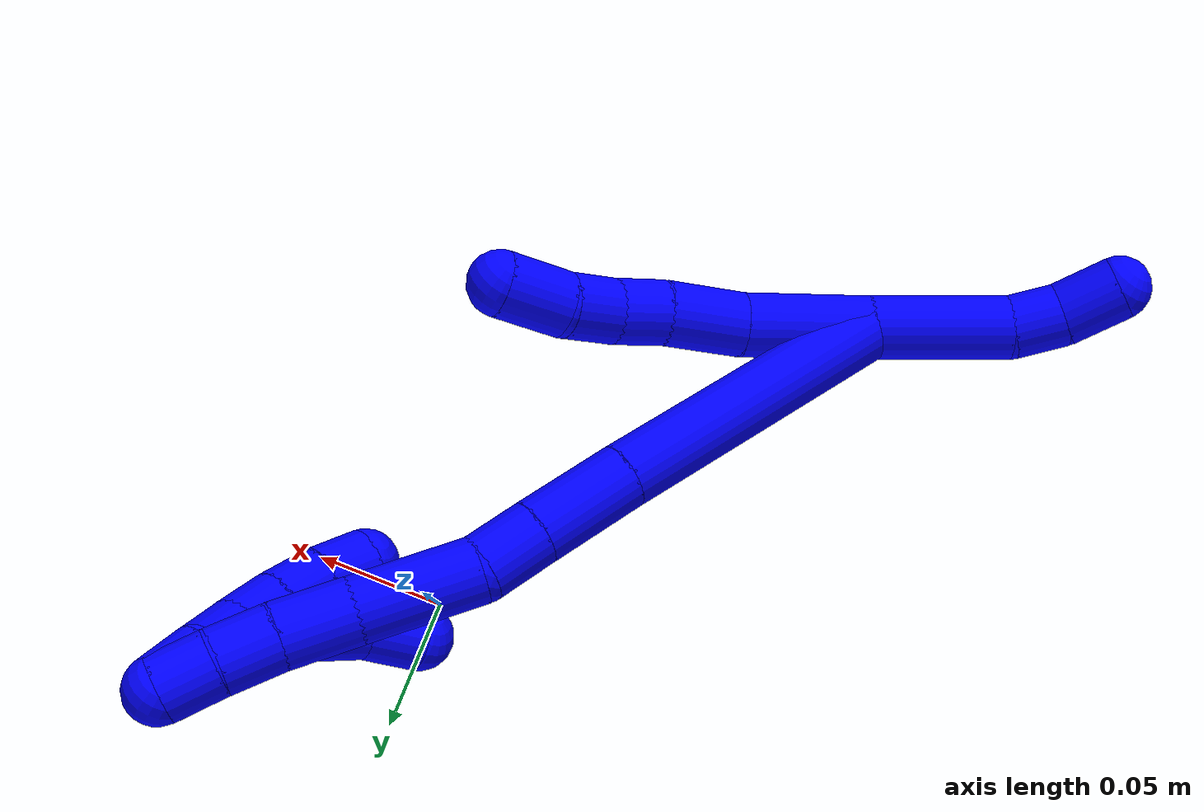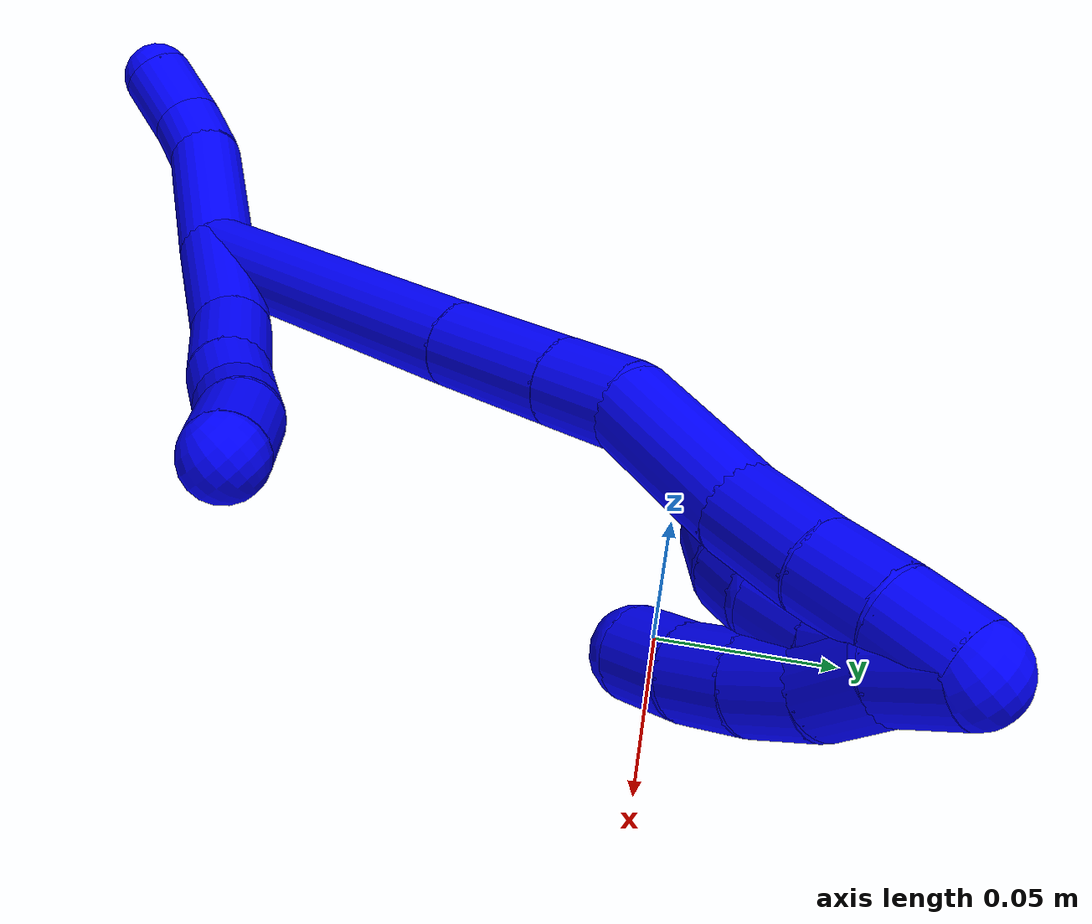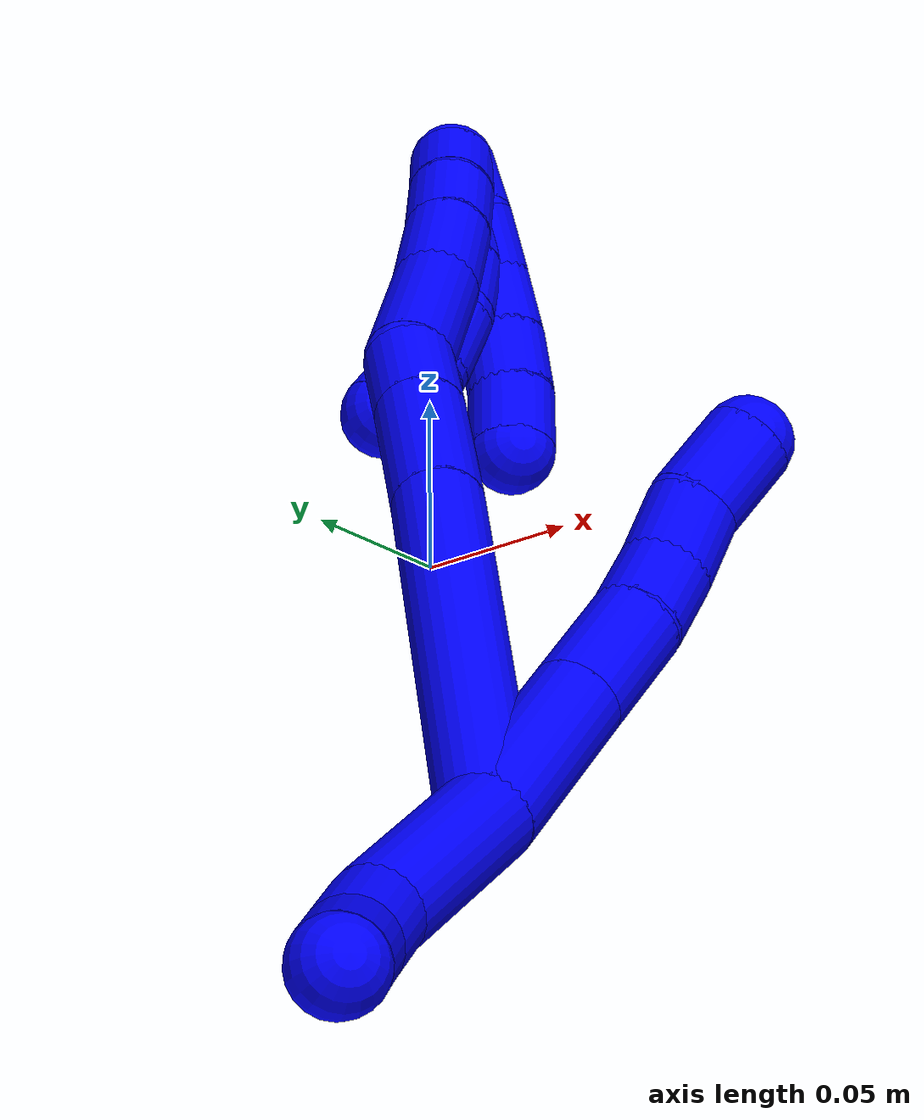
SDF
<sdf version="1.7">
 <world name="default">
  <model name="1">
   <static>0</static>
   <link name="1">
    <collision name="collision-cylinder-e_1_2_8">
     <pose>0.022806 0.005603 -0.010366 -2.64609 1.0939 -2.35416</pose>
     <geometry><cylinder><radius>0.0125</radius><length>0.05134</length></cylinder></geometry>
     <surface>
      <friction><ode><mu>1.16</mu><mu2>1.16</mu2><slip1>0</slip1><slip2>0</slip2></ode></friction>
      <contact><ode><kp>1e+06</kp><kd>1</kd><max_vel>0</max_vel><min_depth>0.001</min_depth></ode></contact>
     </surface>
    </collision>
    <visual name="visual-cylinder-e_1_2_8">
     <pose>0.022806 0.005603 -0.010366 -2.64609 1.0939 -2.35416</pose>
     <geometry><cylinder><radius>0.0125</radius><length>0.05134</length></cylinder></geometry>
     <material><ambient>0 0 1 1</ambient></material>
    </visual>
    <collision name="collision-cylinder-e_2_8_9">
     <pose>0.060382 0.014872 -0.024689 -2.39424 1.22063 -2.11965</pose>
     <geometry><cylinder><radius>0.0125</radius><length>0.031448</length></cylinder></geometry>
     <surface>
      <friction><ode><mu>1.16</mu><mu2>1.16</mu2><slip1>0</slip1><slip2>0</slip2></ode></friction>
      <contact><ode><kp>1e+06</kp><kd>1</kd><max_vel>0</max_vel><min_depth>0.001</min_depth></ode></contact>
     </surface>
    </collision>
    <visual name="visual-cylinder-e_2_8_9">
     <pose>0.060382 0.014872 -0.024689 -2.39424 1.22063 -2.11965</pose>
     <geometry><cylinder><radius>0.0125</radius><length>0.031448</length></cylinder></geometry>
     <material><ambient>0 0 1 1</ambient></material>
    </visual>
    <collision name="collision-cylinder-e_3_9_10">
     <pose>0.08419 0.021933 -0.031814 -2.32179 1.09614 -1.9044</pose>
     <geometry><cylinder><radius>0.0125</radius><length>0.020324</length></cylinder></geometry>
     <surface>
      <friction><ode><mu>1.16</mu><mu2>1.16</mu2><slip1>0</slip1><slip2>0</slip2></ode></friction>
      <contact><ode><kp>1e+06</kp><kd>1</kd><max_vel>0</max_vel><min_depth>0.001</min_depth></ode></contact>
     </surface>
    </collision>
    <visual name="visual-cylinder-e_3_9_10">
     <pose>0.08419 0.021933 -0.031814 -2.32179 1.09614 -1.9044</pose>
     <geometry><cylinder><radius>0.0125</radius><length>0.020324</length></cylinder></geometry>
     <material><ambient>0 0 1 1</ambient></material>
    </visual>
    <collision name="collision-cylinder-e_4_10_11">
     <pose>0.102473 0.029964 -0.036107 -1.80865 1.09442 -1.31817</pose>
     <geometry><cylinder><radius>0.0125</radius><length>0.020807</length></cylinder></geometry>
     <surface>
      <friction><ode><mu>1.16</mu><mu2>1.16</mu2><slip1>0</slip1><slip2>0</slip2></ode></friction>
      <contact><ode><kp>1e+06</kp><kd>1</kd><max_vel>0</max_vel><min_depth>0.001</min_depth></ode></contact>
     </surface>
    </collision>
    <visual name="visual-cylinder-e_4_10_11">
     <pose>0.102473 0.029964 -0.036107 -1.80865 1.09442 -1.31817</pose>
     <geometry><cylinder><radius>0.0125</radius><length>0.020807</length></cylinder></geometry>
     <material><ambient>0 0 1 1</ambient></material>
    </visual>
    <collision name="collision-cylinder-e_5_11_6">
     <pose>0.124389 0.037544 -0.03816 -1.87632 1.33187 -1.6399</pose>
     <geometry><cylinder><radius>0.0125</radius><length>0.026082</length></cylinder></geometry>
     <surface>
      <friction><ode><mu>1.16</mu><mu2>1.16</mu2><slip1>0</slip1><slip2>0</slip2></ode></friction>
      <contact><ode><kp>1e+06</kp><kd>1</kd><max_vel>0</max_vel><min_depth>0.001</min_depth></ode></contact>
     </surface>
    </collision>
    <visual name="visual-cylinder-e_5_11_6">
     <pose>0.124389 0.037544 -0.03816 -1.87632 1.33187 -1.6399</pose>
     <geometry><cylinder><radius>0.0125</radius><length>0.026082</length></cylinder></geometry>
     <material><ambient>0 0 1 1</ambient></material>
    </visual>
    <collision name="collision-cylinder-e_1_2_12">
     <pose>-0.023558 -0.002202 0.014157 0.154288 -1.02438 -0.086865</pose>
     <geometry><cylinder><radius>0.0125</radius><length>0.055145</length></cylinder></geometry>
     <surface>
      <friction><ode><mu>1.16</mu><mu2>1.16</mu2><slip1>0</slip1><slip2>0</slip2></ode></friction>
      <contact><ode><kp>1e+06</kp><kd>1</kd><max_vel>0</max_vel><min_depth>0.001</min_depth></ode></contact>
     </surface>
    </collision>
    <visual name="visual-cylinder-e_1_2_12">
     <pose>-0.023558 -0.002202 0.014157 0.154288 -1.02438 -0.086865</pose>
     <geometry><cylinder><radius>0.0125</radius><length>0.055145</length></cylinder></geometry>
     <material><ambient>0 0 1 1</ambient></material>
    </visual>
    <collision name="collision-cylinder-e_2_12_13">
     <pose>-0.054362 -0.006182 0.035402 0.245849 -0.781203 -0.101656</pose>
     <geometry><cylinder><radius>0.0125</radius><length>0.020582</length></cylinder></geometry>
     <surface>
      <friction><ode><mu>1.16</mu><mu2>1.16</mu2><slip1>0</slip1><slip2>0</slip2></ode></friction>
      <contact><ode><kp>1e+06</kp><kd>1</kd><max_vel>0</max_vel><min_depth>0.001</min_depth></ode></contact>
     </surface>
    </collision>
    <visual name="visual-cylinder-e_2_12_13">
     <pose>-0.054362 -0.006182 0.035402 0.245849 -0.781203 -0.101656</pose>
     <geometry><cylinder><radius>0.0125</radius><length>0.020582</length></cylinder></geometry>
     <material><ambient>0 0 1 1</ambient></material>
    </visual>
    <collision name="collision-cylinder-e_3_13_5">
     <pose>-0.06766 -0.009335 0.052919 0.131026 -0.522091 -0.035049</pose>
     <geometry><cylinder><radius>0.0125</radius><length>0.024273</length></cylinder></geometry>
     <surface>
      <friction><ode><mu>1.16</mu><mu2>1.16</mu2><slip1>0</slip1><slip2>0</slip2></ode></friction>
      <contact><ode><kp>1e+06</kp><kd>1</kd><max_vel>0</max_vel><min_depth>0.001</min_depth></ode></contact>
     </surface>
    </collision>
    <visual name="visual-cylinder-e_3_13_5">
     <pose>-0.06766 -0.009335 0.052919 0.131026 -0.522091 -0.035049</pose>
     <geometry><cylinder><radius>0.0125</radius><length>0.024273</length></cylinder></geometry>
     <material><ambient>0 0 1 1</ambient></material>
    </visual>
    <collision name="collision-cylinder-e_1_2_14">
     <pose>0.03353 0.038492 -0.031892 -2.26269 0.590843 -1.14902</pose>
     <geometry><cylinder><radius>0.0125</radius><length>0.120383</length></cylinder></geometry>
     <surface>
      <friction><ode><mu>1.16</mu><mu2>1.16</mu2><slip1>0</slip1><slip2>0</slip2></ode></friction>
      <contact><ode><kp>1e+06</kp><kd>1</kd><max_vel>0</max_vel><min_depth>0.001</min_depth></ode></contact>
     </surface>
    </collision>
    <visual name="visual-cylinder-e_1_2_14">
     <pose>0.03353 0.038492 -0.031892 -2.26269 0.590843 -1.14902</pose>
     <geometry><cylinder><radius>0.0125</radius><length>0.120383</length></cylinder></geometry>
     <material><ambient>0 0 1 1</ambient></material>
    </visual>
    <collision name="collision-cylinder-e_2_14_15">
     <pose>0.077789 0.089955 -0.074538 -2.26311 0.566968 -1.11005</pose>
     <geometry><cylinder><radius>0.0125</radius><length>0.03995</length></cylinder></geometry>
     <surface>
      <friction><ode><mu>1.16</mu><mu2>1.16</mu2><slip1>0</slip1><slip2>0</slip2></ode></friction>
      <contact><ode><kp>1e+06</kp><kd>1</kd><max_vel>0</max_vel><min_depth>0.001</min_depth></ode></contact>
     </surface>
    </collision>
    <visual name="visual-cylinder-e_2_14_15">
     <pose>0.077789 0.089955 -0.074538 -2.26311 0.566968 -1.11005</pose>
     <geometry><cylinder><radius>0.0125</radius><length>0.03995</length></cylinder></geometry>
     <material><ambient>0 0 1 1</ambient></material>
    </visual>
    <collision name="collision-cylinder-e_3_15_16">
     <pose>0.094788 0.110726 -0.091896 -2.27318 0.550427 -1.09394</pose>
     <geometry><cylinder><radius>0.0125</radius><length>0.023981</length></cylinder></geometry>
     <surface>
      <friction><ode><mu>1.16</mu><mu2>1.16</mu2><slip1>0</slip1><slip2>0</slip2></ode></friction>
      <contact><ode><kp>1e+06</kp><kd>1</kd><max_vel>0</max_vel><min_depth>0.001</min_depth></ode></contact>
     </surface>
    </collision>
    <visual name="visual-cylinder-e_3_15_16">
     <pose>0.094788 0.110726 -0.091896 -2.27318 0.550427 -1.09394</pose>
     <geometry><cylinder><radius>0.0125</radius><length>0.023981</length></cylinder></geometry>
     <material><ambient>0 0 1 1</ambient></material>
    </visual>
    <collision name="collision-cylinder-e_4_16_17">
     <pose>0.117168 0.127228 -0.112093 -2.57221 0.784367 -1.91007</pose>
     <geometry><cylinder><radius>0.0125</radius><length>0.045608</length></cylinder></geometry>
     <surface>
      <friction><ode><mu>1.16</mu><mu2>1.16</mu2><slip1>0</slip1><slip2>0</slip2></ode></friction>
      <contact><ode><kp>1e+06</kp><kd>1</kd><max_vel>0</max_vel><min_depth>0.001</min_depth></ode></contact>
     </surface>
    </collision>
    <visual name="visual-cylinder-e_4_16_17">
     <pose>0.117168 0.127228 -0.112093 -2.57221 0.784367 -1.91007</pose>
     <geometry><cylinder><radius>0.0125</radius><length>0.045608</length></cylinder></geometry>
     <material><ambient>0 0 1 1</ambient></material>
    </visual>
    <collision name="collision-cylinder-e_5_17_18">
     <pose>0.143382 0.142713 -0.132743 -2.37589 0.801444 -1.62142</pose>
     <geometry><cylinder><radius>0.0125</radius><length>0.028137</length></cylinder></geometry>
     <surface>
      <friction><ode><mu>1.16</mu><mu2>1.16</mu2><slip1>0</slip1><slip2>0</slip2></ode></friction>
      <contact><ode><kp>1e+06</kp><kd>1</kd><max_vel>0</max_vel><min_depth>0.001</min_depth></ode></contact>
     </surface>
    </collision>
    <visual name="visual-cylinder-e_5_17_18">
     <pose>0.143382 0.142713 -0.132743 -2.37589 0.801444 -1.62142</pose>
     <geometry><cylinder><radius>0.0125</radius><length>0.028137</length></cylinder></geometry>
     <material><ambient>0 0 1 1</ambient></material>
    </visual>
    <collision name="collision-cylinder-e_6_18_19">
     <pose>0.160625 0.155082 -0.145625 -2.37729 0.723941 -1.51123</pose>
     <geometry><cylinder><radius>0.0125</radius><length>0.021548</length></cylinder></geometry>
     <surface>
      <friction><ode><mu>1.16</mu><mu2>1.16</mu2><slip1>0</slip1><slip2>0</slip2></ode></friction>
      <contact><ode><kp>1e+06</kp><kd>1</kd><max_vel>0</max_vel><min_depth>0.001</min_depth></ode></contact>
     </surface>
    </collision>
    <visual name="visual-cylinder-e_6_18_19">
     <pose>0.160625 0.155082 -0.145625 -2.37729 0.723941 -1.51123</pose>
     <geometry><cylinder><radius>0.0125</radius><length>0.021548</length></cylinder></geometry>
     <material><ambient>0 0 1 1</ambient></material>
    </visual>
    <collision name="collision-cylinder-e_7_19_1">
     <pose>0.174011 0.165485 -0.15791 -2.5007 0.659867 -1.60214</pose>
     <geometry><cylinder><radius>0.0125</radius><length>0.020394</length></cylinder></geometry>
     <surface>
      <friction><ode><mu>1.16</mu><mu2>1.16</mu2><slip1>0</slip1><slip2>0</slip2></ode></friction>
      <contact><ode><kp>1e+06</kp><kd>1</kd><max_vel>0</max_vel><min_depth>0.001</min_depth></ode></contact>
     </surface>
    </collision>
    <visual name="visual-cylinder-e_7_19_1">
     <pose>0.174011 0.165485 -0.15791 -2.5007 0.659867 -1.60214</pose>
     <geometry><cylinder><radius>0.0125</radius><length>0.020394</length></cylinder></geometry>
     <material><ambient>0 0 1 1</ambient></material>
    </visual>
    <collision name="collision-cylinder-e_1_1_20">
     <pose>0.175881 0.161648 -0.161936 1.29692 -0.453562 -0.346212</pose>
     <geometry><cylinder><radius>0.0125</radius><length>0.02</length></cylinder></geometry>
     <surface>
      <friction><ode><mu>1.16</mu><mu2>1.16</mu2><slip1>0</slip1><slip2>0</slip2></ode></friction>
      <contact><ode><kp>1e+06</kp><kd>1</kd><max_vel>0</max_vel><min_depth>0.001</min_depth></ode></contact>
     </surface>
    </collision>
    <visual name="visual-cylinder-e_1_1_20">
     <pose>0.175881 0.161648 -0.161936 1.29692 -0.453562 -0.346212</pose>
     <geometry><cylinder><radius>0.0125</radius><length>0.02</length></cylinder></geometry>
     <material><ambient>0 0 1 1</ambient></material>
    </visual>
    <collision name="collision-cylinder-e_2_20_21">
     <pose>0.167436 0.143857 -0.159575 1.57845 -0.418413 -0.421536</pose>
     <geometry><cylinder><radius>0.0125</radius><length>0.02</length></cylinder></geometry>
     <surface>
      <friction><ode><mu>1.16</mu><mu2>1.16</mu2><slip1>0</slip1><slip2>0</slip2></ode></friction>
      <contact><ode><kp>1e+06</kp><kd>1</kd><max_vel>0</max_vel><min_depth>0.001</min_depth></ode></contact>
     </surface>
    </collision>
    <visual name="visual-cylinder-e_2_20_21">
     <pose>0.167436 0.143857 -0.159575 1.57845 -0.418413 -0.421536</pose>
     <geometry><cylinder><radius>0.0125</radius><length>0.02</length></cylinder></geometry>
     <material><ambient>0 0 1 1</ambient></material>
    </visual>
    <collision name="collision-cylinder-e_3_21_22">
     <pose>0.15859 0.126182 -0.157589 1.33446 -0.498718 -0.395962</pose>
     <geometry><cylinder><radius>0.0125</radius><length>0.02</length></cylinder></geometry>
     <surface>
      <friction><ode><mu>1.16</mu><mu2>1.16</mu2><slip1>0</slip1><slip2>0</slip2></ode></friction>
      <contact><ode><kp>1e+06</kp><kd>1</kd><max_vel>0</max_vel><min_depth>0.001</min_depth></ode></contact>
     </surface>
    </collision>
    <visual name="visual-cylinder-e_3_21_22">
     <pose>0.15859 0.126182 -0.157589 1.33446 -0.498718 -0.395962</pose>
     <geometry><cylinder><radius>0.0125</radius><length>0.02</length></cylinder></geometry>
     <material><ambient>0 0 1 1</ambient></material>
    </visual>
    <collision name="collision-cylinder-e_4_22_23">
     <pose>0.148272 0.109741 -0.152905 1.24987 -0.586493 -0.428946</pose>
     <geometry><cylinder><radius>0.0125</radius><length>0.02</length></cylinder></geometry>
     <surface>
      <friction><ode><mu>1.16</mu><mu2>1.16</mu2><slip1>0</slip1><slip2>0</slip2></ode></friction>
      <contact><ode><kp>1e+06</kp><kd>1</kd><max_vel>0</max_vel><min_depth>0.001</min_depth></ode></contact>
     </surface>
    </collision>
    <visual name="visual-cylinder-e_4_22_23">
     <pose>0.148272 0.109741 -0.152905 1.24987 -0.586493 -0.428946</pose>
     <geometry><cylinder><radius>0.0125</radius><length>0.02</length></cylinder></geometry>
     <material><ambient>0 0 1 1</ambient></material>
    </visual>
    <collision name="collision-cylinder-e_5_23_4">
     <pose>0.136186 0.094812 -0.147498 1.19404 -0.714414 -0.496921</pose>
     <geometry><cylinder><radius>0.0125</radius><length>0.02</length></cylinder></geometry>
     <surface>
      <friction><ode><mu>1.16</mu><mu2>1.16</mu2><slip1>0</slip1><slip2>0</slip2></ode></friction>
      <contact><ode><kp>1e+06</kp><kd>1</kd><max_vel>0</max_vel><min_depth>0.001</min_depth></ode></contact>
     </surface>
    </collision>
    <visual name="visual-cylinder-e_5_23_4">
     <pose>0.136186 0.094812 -0.147498 1.19404 -0.714414 -0.496921</pose>
     <geometry><cylinder><radius>0.0125</radius><length>0.02</length></cylinder></geometry>
     <material><ambient>0 0 1 1</ambient></material>
    </visual>
    <collision name="collision-cylinder-e_1_1_24">
     <pose>0.168591 0.156287 -0.159361 1.22769 -0.665057 -0.477428</pose>
     <geometry><cylinder><radius>0.0125</radius><length>0.037827</length></cylinder></geometry>
     <surface>
      <friction><ode><mu>1.16</mu><mu2>1.16</mu2><slip1>0</slip1><slip2>0</slip2></ode></friction>
      <contact><ode><kp>1e+06</kp><kd>1</kd><max_vel>0</max_vel><min_depth>0.001</min_depth></ode></contact>
     </surface>
    </collision>
    <visual name="visual-cylinder-e_1_1_24">
     <pose>0.168591 0.156287 -0.159361 1.22769 -0.665057 -0.477428</pose>
     <geometry><cylinder><radius>0.0125</radius><length>0.037827</length></cylinder></geometry>
     <material><ambient>0 0 1 1</ambient></material>
    </visual>
    <collision name="collision-cylinder-e_2_24_25">
     <pose>0.149337 0.13653 -0.150092 0.932238 -0.814736 -0.427541</pose>
     <geometry><cylinder><radius>0.0125</radius><length>0.020845</length></cylinder></geometry>
     <surface>
      <friction><ode><mu>1.16</mu><mu2>1.16</mu2><slip1>0</slip1><slip2>0</slip2></ode></friction>
      <contact><ode><kp>1e+06</kp><kd>1</kd><max_vel>0</max_vel><min_depth>0.001</min_depth></ode></contact>
     </surface>
    </collision>
    <visual name="visual-cylinder-e_2_24_25">
     <pose>0.149337 0.13653 -0.150092 0.932238 -0.814736 -0.427541</pose>
     <geometry><cylinder><radius>0.0125</radius><length>0.020845</length></cylinder></geometry>
     <material><ambient>0 0 1 1</ambient></material>
    </visual>
    <collision name="collision-cylinder-e_3_25_26">
     <pose>0.132901 0.126171 -0.144251 1.24129 -1.06698 -0.79903</pose>
     <geometry><cylinder><radius>0.0125</radius><length>0.020218</length></cylinder></geometry>
     <surface>
      <friction><ode><mu>1.16</mu><mu2>1.16</mu2><slip1>0</slip1><slip2>0</slip2></ode></friction>
      <contact><ode><kp>1e+06</kp><kd>1</kd><max_vel>0</max_vel><min_depth>0.001</min_depth></ode></contact>
     </surface>
    </collision>
    <visual name="visual-cylinder-e_3_25_26">
     <pose>0.132901 0.126171 -0.144251 1.24129 -1.06698 -0.79903</pose>
     <geometry><cylinder><radius>0.0125</radius><length>0.020218</length></cylinder></geometry>
     <material><ambient>0 0 1 1</ambient></material>
    </visual>
    <collision name="collision-cylinder-e_4_26_3">
     <pose>0.113821 0.119149 -0.14165 1.16873 -1.3207 -0.949107</pose>
     <geometry><cylinder><radius>0.0125</radius><length>0.02111</length></cylinder></geometry>
     <surface>
      <friction><ode><mu>1.16</mu><mu2>1.16</mu2><slip1>0</slip1><slip2>0</slip2></ode></friction>
      <contact><ode><kp>1e+06</kp><kd>1</kd><max_vel>0</max_vel><min_depth>0.001</min_depth></ode></contact>
     </surface>
    </collision>
    <visual name="visual-cylinder-e_4_26_3">
     <pose>0.113821 0.119149 -0.14165 1.16873 -1.3207 -0.949107</pose>
     <geometry><cylinder><radius>0.0125</radius><length>0.02111</length></cylinder></geometry>
     <material><ambient>0 0 1 1</ambient></material>
    </visual>
    <collision name="collision-sphere-3">
     <pose>0.103594 0.116745 -0.140627 0 -0 0</pose>
     <geometry><sphere><radius>0.0125</radius></sphere></geometry>
     <surface>
      <friction><ode><mu>1.16</mu><mu2>1.16</mu2><slip1>0</slip1><slip2>0</slip2></ode></friction>
      <contact><ode><kp>1e+06</kp><kd>1</kd><max_vel>0</max_vel><min_depth>0.001</min_depth></ode></contact>
     </surface>
    </collision>
    <visual name="visual-sphere-3">
     <pose>0.103594 0.116745 -0.140627 0 -0 0</pose>
     <geometry><sphere><radius>0.0125</radius></sphere></geometry>
     <material><ambient>0 0 1 1</ambient></material>
    </visual>
    <collision name="collision-sphere-26">
     <pose>0.124048 0.121553 -0.142672 0 -0 0</pose>
     <geometry><sphere><radius>0.0125</radius></sphere></geometry>
     <surface>
      <friction><ode><mu>1.16</mu><mu2>1.16</mu2><slip1>0</slip1><slip2>0</slip2></ode></friction>
      <contact><ode><kp>1e+06</kp><kd>1</kd><max_vel>0</max_vel><min_depth>0.001</min_depth></ode></contact>
     </surface>
    </collision>
    <visual name="visual-sphere-26">
     <pose>0.124048 0.121553 -0.142672 0 -0 0</pose>
     <geometry><sphere><radius>0.0125</radius></sphere></geometry>
     <material><ambient>0 0 1 1</ambient></material>
    </visual>
    <collision name="collision-sphere-25">
     <pose>0.141754 0.130789 -0.14583 0 -0 0</pose>
     <geometry><sphere><radius>0.0125</radius></sphere></geometry>
     <surface>
      <friction><ode><mu>1.16</mu><mu2>1.16</mu2><slip1>0</slip1><slip2>0</slip2></ode></friction>
      <contact><ode><kp>1e+06</kp><kd>1</kd><max_vel>0</max_vel><min_depth>0.001</min_depth></ode></contact>
     </surface>
    </collision>
    <visual name="visual-sphere-25">
     <pose>0.141754 0.130789 -0.14583 0 -0 0</pose>
     <geometry><sphere><radius>0.0125</radius></sphere></geometry>
     <material><ambient>0 0 1 1</ambient></material>
    </visual>
    <collision name="collision-sphere-24">
     <pose>0.15692 0.142272 -0.154354 0 -0 0</pose>
     <geometry><sphere><radius>0.0125</radius></sphere></geometry>
     <surface>
      <friction><ode><mu>1.16</mu><mu2>1.16</mu2><slip1>0</slip1><slip2>0</slip2></ode></friction>
      <contact><ode><kp>1e+06</kp><kd>1</kd><max_vel>0</max_vel><min_depth>0.001</min_depth></ode></contact>
     </surface>
    </collision>
    <visual name="visual-sphere-24">
     <pose>0.15692 0.142272 -0.154354 0 -0 0</pose>
     <geometry><sphere><radius>0.0125</radius></sphere></geometry>
     <material><ambient>0 0 1 1</ambient></material>
    </visual>
    <collision name="collision-sphere-4">
     <pose>0.129635 0.087787 -0.144719 0 -0 0</pose>
     <geometry><sphere><radius>0.0125</radius></sphere></geometry>
     <surface>
      <friction><ode><mu>1.16</mu><mu2>1.16</mu2><slip1>0</slip1><slip2>0</slip2></ode></friction>
      <contact><ode><kp>1e+06</kp><kd>1</kd><max_vel>0</max_vel><min_depth>0.001</min_depth></ode></contact>
     </surface>
    </collision>
    <visual name="visual-sphere-4">
     <pose>0.129635 0.087787 -0.144719 0 -0 0</pose>
     <geometry><sphere><radius>0.0125</radius></sphere></geometry>
     <material><ambient>0 0 1 1</ambient></material>
    </visual>
    <collision name="collision-sphere-23">
     <pose>0.142738 0.101837 -0.150278 0 -0 0</pose>
     <geometry><sphere><radius>0.0125</radius></sphere></geometry>
     <surface>
      <friction><ode><mu>1.16</mu><mu2>1.16</mu2><slip1>0</slip1><slip2>0</slip2></ode></friction>
      <contact><ode><kp>1e+06</kp><kd>1</kd><max_vel>0</max_vel><min_depth>0.001</min_depth></ode></contact>
     </surface>
    </collision>
    <visual name="visual-sphere-23">
     <pose>0.142738 0.101837 -0.150278 0 -0 0</pose>
     <geometry><sphere><radius>0.0125</radius></sphere></geometry>
     <material><ambient>0 0 1 1</ambient></material>
    </visual>
    <collision name="collision-sphere-22">
     <pose>0.153807 0.117644 -0.155533 0 -0 0</pose>
     <geometry><sphere><radius>0.0125</radius></sphere></geometry>
     <surface>
      <friction><ode><mu>1.16</mu><mu2>1.16</mu2><slip1>0</slip1><slip2>0</slip2></ode></friction>
      <contact><ode><kp>1e+06</kp><kd>1</kd><max_vel>0</max_vel><min_depth>0.001</min_depth></ode></contact>
     </surface>
    </collision>
    <visual name="visual-sphere-22">
     <pose>0.153807 0.117644 -0.155533 0 -0 0</pose>
     <geometry><sphere><radius>0.0125</radius></sphere></geometry>
     <material><ambient>0 0 1 1</ambient></material>
    </visual>
    <collision name="collision-sphere-21">
     <pose>0.163373 0.13472 -0.159645 0 -0 0</pose>
     <geometry><sphere><radius>0.0125</radius></sphere></geometry>
     <surface>
      <friction><ode><mu>1.16</mu><mu2>1.16</mu2><slip1>0</slip1><slip2>0</slip2></ode></friction>
      <contact><ode><kp>1e+06</kp><kd>1</kd><max_vel>0</max_vel><min_depth>0.001</min_depth></ode></contact>
     </surface>
    </collision>
    <visual name="visual-sphere-21">
     <pose>0.163373 0.13472 -0.159645 0 -0 0</pose>
     <geometry><sphere><radius>0.0125</radius></sphere></geometry>
     <material><ambient>0 0 1 1</ambient></material>
    </visual>
    <collision name="collision-sphere-20">
     <pose>0.171499 0.152994 -0.159505 0 -0 0</pose>
     <geometry><sphere><radius>0.0125</radius></sphere></geometry>
     <surface>
      <friction><ode><mu>1.16</mu><mu2>1.16</mu2><slip1>0</slip1><slip2>0</slip2></ode></friction>
      <contact><ode><kp>1e+06</kp><kd>1</kd><max_vel>0</max_vel><min_depth>0.001</min_depth></ode></contact>
     </surface>
    </collision>
    <visual name="visual-sphere-20">
     <pose>0.171499 0.152994 -0.159505 0 -0 0</pose>
     <geometry><sphere><radius>0.0125</radius></sphere></geometry>
     <material><ambient>0 0 1 1</ambient></material>
    </visual>
    <collision name="collision-sphere-6">
     <pose>0.137059 0.040487 -0.039088 0 -0 0</pose>
     <geometry><sphere><radius>0.0125</radius></sphere></geometry>
     <surface>
      <friction><ode><mu>1.16</mu><mu2>1.16</mu2><slip1>0</slip1><slip2>0</slip2></ode></friction>
      <contact><ode><kp>1e+06</kp><kd>1</kd><max_vel>0</max_vel><min_depth>0.001</min_depth></ode></contact>
     </surface>
    </collision>
    <visual name="visual-sphere-6">
     <pose>0.137059 0.040487 -0.039088 0 -0 0</pose>
     <geometry><sphere><radius>0.0125</radius></sphere></geometry>
     <material><ambient>0 0 1 1</ambient></material>
    </visual>
    <collision name="collision-sphere-11">
     <pose>0.111718 0.034601 -0.037231 0 -0 0</pose>
     <geometry><sphere><radius>0.0125</radius></sphere></geometry>
     <surface>
      <friction><ode><mu>1.16</mu><mu2>1.16</mu2><slip1>0</slip1><slip2>0</slip2></ode></friction>
      <contact><ode><kp>1e+06</kp><kd>1</kd><max_vel>0</max_vel><min_depth>0.001</min_depth></ode></contact>
     </surface>
    </collision>
    <visual name="visual-sphere-11">
     <pose>0.111718 0.034601 -0.037231 0 -0 0</pose>
     <geometry><sphere><radius>0.0125</radius></sphere></geometry>
     <material><ambient>0 0 1 1</ambient></material>
    </visual>
    <collision name="collision-sphere-10">
     <pose>0.093228 0.025328 -0.034983 0 -0 0</pose>
     <geometry><sphere><radius>0.0125</radius></sphere></geometry>
     <surface>
      <friction><ode><mu>1.16</mu><mu2>1.16</mu2><slip1>0</slip1><slip2>0</slip2></ode></friction>
      <contact><ode><kp>1e+06</kp><kd>1</kd><max_vel>0</max_vel><min_depth>0.001</min_depth></ode></contact>
     </surface>
    </collision>
    <visual name="visual-sphere-10">
     <pose>0.093228 0.025328 -0.034983 0 -0 0</pose>
     <geometry><sphere><radius>0.0125</radius></sphere></geometry>
     <material><ambient>0 0 1 1</ambient></material>
    </visual>
    <collision name="collision-sphere-9">
     <pose>0.075151 0.018538 -0.028645 0 -0 0</pose>
     <geometry><sphere><radius>0.0125</radius></sphere></geometry>
     <surface>
      <friction><ode><mu>1.16</mu><mu2>1.16</mu2><slip1>0</slip1><slip2>0</slip2></ode></friction>
      <contact><ode><kp>1e+06</kp><kd>1</kd><max_vel>0</max_vel><min_depth>0.001</min_depth></ode></contact>
     </surface>
    </collision>
    <visual name="visual-sphere-9">
     <pose>0.075151 0.018538 -0.028645 0 -0 0</pose>
     <geometry><sphere><radius>0.0125</radius></sphere></geometry>
     <material><ambient>0 0 1 1</ambient></material>
    </visual>
    <collision name="collision-sphere-2">
     <geometry><sphere><radius>0.0125</radius></sphere></geometry>
     <surface>
      <friction><ode><mu>1.16</mu><mu2>1.16</mu2><slip1>0</slip1><slip2>0</slip2></ode></friction>
      <contact><ode><kp>1e+06</kp><kd>1</kd><max_vel>0</max_vel><min_depth>0.001</min_depth></ode></contact>
     </surface>
    </collision>
    <visual name="visual-sphere-2">
     <geometry><sphere><radius>0.0125</radius></sphere></geometry>
     <material><ambient>0 0 1 1</ambient></material>
    </visual>
    <collision name="collision-sphere-19">
     <pose>0.16776 0.160668 -0.151452 0 -0 0</pose>
     <geometry><sphere><radius>0.0125</radius></sphere></geometry>
     <surface>
      <friction><ode><mu>1.16</mu><mu2>1.16</mu2><slip1>0</slip1><slip2>0</slip2></ode></friction>
      <contact><ode><kp>1e+06</kp><kd>1</kd><max_vel>0</max_vel><min_depth>0.001</min_depth></ode></contact>
     </surface>
    </collision>
    <visual name="visual-sphere-19">
     <pose>0.16776 0.160668 -0.151452 0 -0 0</pose>
     <geometry><sphere><radius>0.0125</radius></sphere></geometry>
     <material><ambient>0 0 1 1</ambient></material>
    </visual>
    <collision name="collision-sphere-8">
     <pose>0.045612 0.011205 -0.020732 0 -0 0</pose>
     <geometry><sphere><radius>0.0125</radius></sphere></geometry>
     <surface>
      <friction><ode><mu>1.16</mu><mu2>1.16</mu2><slip1>0</slip1><slip2>0</slip2></ode></friction>
      <contact><ode><kp>1e+06</kp><kd>1</kd><max_vel>0</max_vel><min_depth>0.001</min_depth></ode></contact>
     </surface>
    </collision>
    <visual name="visual-sphere-8">
     <pose>0.045612 0.011205 -0.020732 0 -0 0</pose>
     <geometry><sphere><radius>0.0125</radius></sphere></geometry>
     <material><ambient>0 0 1 1</ambient></material>
    </visual>
    <collision name="collision-sphere-12">
     <pose>-0.047115 -0.004404 0.028314 0 -0 0</pose>
     <geometry><sphere><radius>0.0125</radius></sphere></geometry>
     <surface>
      <friction><ode><mu>1.16</mu><mu2>1.16</mu2><slip1>0</slip1><slip2>0</slip2></ode></friction>
      <contact><ode><kp>1e+06</kp><kd>1</kd><max_vel>0</max_vel><min_depth>0.001</min_depth></ode></contact>
     </surface>
    </collision>
    <visual name="visual-sphere-12">
     <pose>-0.047115 -0.004404 0.028314 0 -0 0</pose>
     <geometry><sphere><radius>0.0125</radius></sphere></geometry>
     <material><ambient>0 0 1 1</ambient></material>
    </visual>
    <collision name="collision-sphere-13">
     <pose>-0.061608 -0.00796 0.042489 0 -0 0</pose>
     <geometry><sphere><radius>0.0125</radius></sphere></geometry>
     <surface>
      <friction><ode><mu>1.16</mu><mu2>1.16</mu2><slip1>0</slip1><slip2>0</slip2></ode></friction>
      <contact><ode><kp>1e+06</kp><kd>1</kd><max_vel>0</max_vel><min_depth>0.001</min_depth></ode></contact>
     </surface>
    </collision>
    <visual name="visual-sphere-13">
     <pose>-0.061608 -0.00796 0.042489 0 -0 0</pose>
     <geometry><sphere><radius>0.0125</radius></sphere></geometry>
     <material><ambient>0 0 1 1</ambient></material>
    </visual>
    <collision name="collision-sphere-5">
     <pose>-0.073713 -0.010709 0.063349 0 -0 0</pose>
     <geometry><sphere><radius>0.0125</radius></sphere></geometry>
     <surface>
      <friction><ode><mu>1.16</mu><mu2>1.16</mu2><slip1>0</slip1><slip2>0</slip2></ode></friction>
      <contact><ode><kp>1e+06</kp><kd>1</kd><max_vel>0</max_vel><min_depth>0.001</min_depth></ode></contact>
     </surface>
    </collision>
    <visual name="visual-sphere-5">
     <pose>-0.073713 -0.010709 0.063349 0 -0 0</pose>
     <geometry><sphere><radius>0.0125</radius></sphere></geometry>
     <material><ambient>0 0 1 1</ambient></material>
    </visual>
    <collision name="collision-sphere-14">
     <pose>0.067061 0.076985 -0.063783 0 -0 0</pose>
     <geometry><sphere><radius>0.0125</radius></sphere></geometry>
     <surface>
      <friction><ode><mu>1.16</mu><mu2>1.16</mu2><slip1>0</slip1><slip2>0</slip2></ode></friction>
      <contact><ode><kp>1e+06</kp><kd>1</kd><max_vel>0</max_vel><min_depth>0.001</min_depth></ode></contact>
     </surface>
    </collision>
    <visual name="visual-sphere-14">
     <pose>0.067061 0.076985 -0.063783 0 -0 0</pose>
     <geometry><sphere><radius>0.0125</radius></sphere></geometry>
     <material><ambient>0 0 1 1</ambient></material>
    </visual>
    <collision name="collision-sphere-15">
     <pose>0.088517 0.102925 -0.085294 0 -0 0</pose>
     <geometry><sphere><radius>0.0125</radius></sphere></geometry>
     <surface>
      <friction><ode><mu>1.16</mu><mu2>1.16</mu2><slip1>0</slip1><slip2>0</slip2></ode></friction>
      <contact><ode><kp>1e+06</kp><kd>1</kd><max_vel>0</max_vel><min_depth>0.001</min_depth></ode></contact>
     </surface>
    </collision>
    <visual name="visual-sphere-15">
     <pose>0.088517 0.102925 -0.085294 0 -0 0</pose>
     <geometry><sphere><radius>0.0125</radius></sphere></geometry>
     <material><ambient>0 0 1 1</ambient></material>
    </visual>
    <collision name="collision-sphere-16">
     <pose>0.10106 0.118526 -0.098498 0 -0 0</pose>
     <geometry><sphere><radius>0.0125</radius></sphere></geometry>
     <surface>
      <friction><ode><mu>1.16</mu><mu2>1.16</mu2><slip1>0</slip1><slip2>0</slip2></ode></friction>
      <contact><ode><kp>1e+06</kp><kd>1</kd><max_vel>0</max_vel><min_depth>0.001</min_depth></ode></contact>
     </surface>
    </collision>
    <visual name="visual-sphere-16">
     <pose>0.10106 0.118526 -0.098498 0 -0 0</pose>
     <geometry><sphere><radius>0.0125</radius></sphere></geometry>
     <material><ambient>0 0 1 1</ambient></material>
    </visual>
    <collision name="collision-sphere-17">
     <pose>0.133276 0.13593 -0.125688 0 -0 0</pose>
     <geometry><sphere><radius>0.0125</radius></sphere></geometry>
     <surface>
      <friction><ode><mu>1.16</mu><mu2>1.16</mu2><slip1>0</slip1><slip2>0</slip2></ode></friction>
      <contact><ode><kp>1e+06</kp><kd>1</kd><max_vel>0</max_vel><min_depth>0.001</min_depth></ode></contact>
     </surface>
    </collision>
    <visual name="visual-sphere-17">
     <pose>0.133276 0.13593 -0.125688 0 -0 0</pose>
     <geometry><sphere><radius>0.0125</radius></sphere></geometry>
     <material><ambient>0 0 1 1</ambient></material>
    </visual>
    <collision name="collision-sphere-18">
     <pose>0.153489 0.149496 -0.139798 0 -0 0</pose>
     <geometry><sphere><radius>0.0125</radius></sphere></geometry>
     <surface>
      <friction><ode><mu>1.16</mu><mu2>1.16</mu2><slip1>0</slip1><slip2>0</slip2></ode></friction>
      <contact><ode><kp>1e+06</kp><kd>1</kd><max_vel>0</max_vel><min_depth>0.001</min_depth></ode></contact>
     </surface>
    </collision>
    <visual name="visual-sphere-18">
     <pose>0.153489 0.149496 -0.139798 0 -0 0</pose>
     <geometry><sphere><radius>0.0125</radius></sphere></geometry>
     <material><ambient>0 0 1 1</ambient></material>
    </visual>
    <collision name="collision-sphere-1">
     <pose>0.180263 0.170302 -0.164368 0 -0 0</pose>
     <geometry><sphere><radius>0.0125</radius></sphere></geometry>
     <surface>
      <friction><ode><mu>1.16</mu><mu2>1.16</mu2><slip1>0</slip1><slip2>0</slip2></ode></friction>
      <contact><ode><kp>1e+06</kp><kd>1</kd><max_vel>0</max_vel><min_depth>0.001</min_depth></ode></contact>
     </surface>
    </collision>
    <visual name="visual-sphere-1">
     <pose>0.180263 0.170302 -0.164368 0 -0 0</pose>
     <geometry><sphere><radius>0.0125</radius></sphere></geometry>
     <material><ambient>0 0 1 1</ambient></material>
    </visual>
    <inertial>
     <pose>0.082946 0.07506 -0.074384 0 -0 0</pose>
     <mass>0.75</mass>
     <inertia>
      <ixx>-6.7e-05</ixx>
      <ixy>0</ixy>
      <ixz>0</ixz>
      <iyy>-6.1e-05</iyy>
      <iyz>0</iyz>
      <izz>-0.0002</izz>
     </inertia>
    </inertial>
   </link>
   <pose>-0.116155 -0.160459 0.014177 0.834797 -0.359327 -0.067689</pose>
  </model>
 </world>
</sdf>
